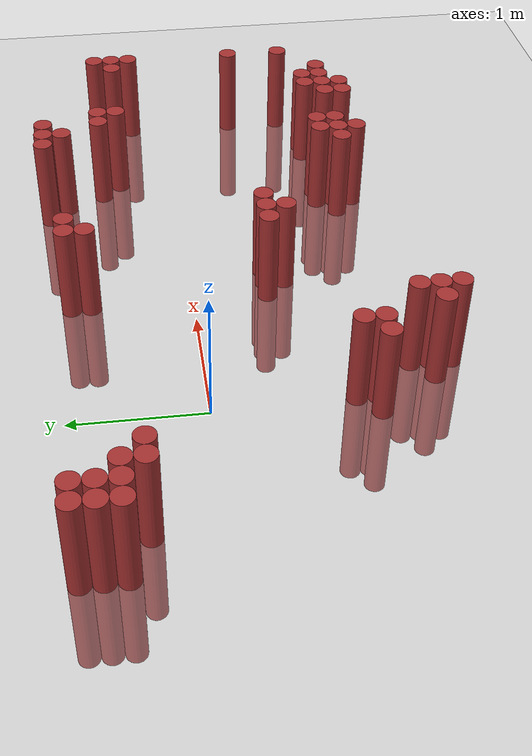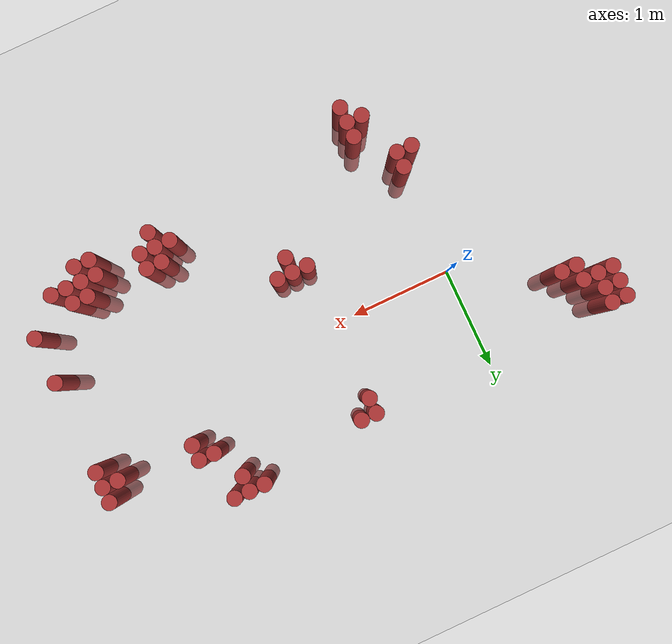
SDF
<sdf version="1.6">
 <world name="default">
  <model name="ground_plane">
   <static>1</static>
   <link name="link">
    <collision name="collision">
     <geometry><plane><normal>0 0 1</normal><size>100 100</size></plane></geometry>
     <surface><friction><ode><mu>100</mu><mu2>50</mu2></ode></friction></surface>
    </collision>
    <visual name="visual">
     <cast_shadows>0</cast_shadows>
     <geometry><plane><normal>0 0 1</normal><size>100 100</size></plane></geometry>
     <material>
      <script><uri>file://media/materials/scripts/gazebo.material</uri><name>Gazebo/Grey</name></script>
     </material>
    </visual>
   </link>
  </model>
  <model name="unit_cylinder_316">
   <static>1</static>
   <pose>-1.325000 0.625000 0.000000 0.000000 0.000000 0.000000</pose>
   <link name="link">
    <inertial>
     <mass>1</mass>
     <inertia><ixx>0.145833</ixx><ixy>0</ixy><ixz>0</ixz><iyy>0.145833</iyy><iyz>0</iyz><izz>0.125</izz></inertia>
    </inertial>
    <collision name="collision">
     <geometry><cylinder><radius>0.075000</radius><length>1.5</length></cylinder></geometry>
    </collision>
    <visual name="visual">
     <geometry><cylinder><radius>0.075000</radius><length>1.5</length></cylinder></geometry>
     <material>
      <ambient>0.648000 0.192000 0.192000 1</ambient>
      <diffuse>0.648000 0.192000 0.192000 1</diffuse>
     </material>
     <material>
      <script><name>Gazebo/Grey</name><uri>file://media/materials/scripts/gazebo.material</uri></script>
     </material>
    </visual>
   </link>
  </model>
  <model name="unit_cylinder_317">
   <static>1</static>
   <pose>-1.325000 0.775000 0.000000 0.000000 0.000000 0.000000</pose>
   <link name="link">
    <inertial>
     <mass>1</mass>
     <inertia><ixx>0.145833</ixx><ixy>0</ixy><ixz>0</ixz><iyy>0.145833</iyy><iyz>0</iyz><izz>0.125</izz></inertia>
    </inertial>
    <collision name="collision">
     <geometry><cylinder><radius>0.075000</radius><length>1.5</length></cylinder></geometry>
    </collision>
    <visual name="visual">
     <geometry><cylinder><radius>0.075000</radius><length>1.5</length></cylinder></geometry>
     <material>
      <ambient>0.648000 0.192000 0.192000 1</ambient>
      <diffuse>0.648000 0.192000 0.192000 1</diffuse>
     </material>
     <material>
      <script><name>Gazebo/Grey</name><uri>file://media/materials/scripts/gazebo.material</uri></script>
     </material>
    </visual>
   </link>
  </model>
  <model name="unit_cylinder_318">
   <static>1</static>
   <pose>-1.325000 0.925000 0.000000 0.000000 0.000000 0.000000</pose>
   <link name="link">
    <inertial>
     <mass>1</mass>
     <inertia><ixx>0.145833</ixx><ixy>0</ixy><ixz>0</ixz><iyy>0.145833</iyy><iyz>0</iyz><izz>0.125</izz></inertia>
    </inertial>
    <collision name="collision">
     <geometry><cylinder><radius>0.075000</radius><length>1.5</length></cylinder></geometry>
    </collision>
    <visual name="visual">
     <geometry><cylinder><radius>0.075000</radius><length>1.5</length></cylinder></geometry>
     <material>
      <ambient>0.648000 0.192000 0.192000 1</ambient>
      <diffuse>0.648000 0.192000 0.192000 1</diffuse>
     </material>
     <material>
      <script><name>Gazebo/Grey</name><uri>file://media/materials/scripts/gazebo.material</uri></script>
     </material>
    </visual>
   </link>
  </model>
  <model name="unit_cylinder_319">
   <static>1</static>
   <pose>-1.175000 0.625000 0.000000 0.000000 0.000000 0.000000</pose>
   <link name="link">
    <inertial>
     <mass>1</mass>
     <inertia><ixx>0.145833</ixx><ixy>0</ixy><ixz>0</ixz><iyy>0.145833</iyy><iyz>0</iyz><izz>0.125</izz></inertia>
    </inertial>
    <collision name="collision">
     <geometry><cylinder><radius>0.075000</radius><length>1.5</length></cylinder></geometry>
    </collision>
    <visual name="visual">
     <geometry><cylinder><radius>0.075000</radius><length>1.5</length></cylinder></geometry>
     <material>
      <ambient>0.648000 0.192000 0.192000 1</ambient>
      <diffuse>0.648000 0.192000 0.192000 1</diffuse>
     </material>
     <material>
      <script><name>Gazebo/Grey</name><uri>file://media/materials/scripts/gazebo.material</uri></script>
     </material>
    </visual>
   </link>
  </model>
  <model name="unit_cylinder_320">
   <static>1</static>
   <pose>-1.175000 0.775000 0.000000 0.000000 0.000000 0.000000</pose>
   <link name="link">
    <inertial>
     <mass>1</mass>
     <inertia><ixx>0.145833</ixx><ixy>0</ixy><ixz>0</ixz><iyy>0.145833</iyy><iyz>0</iyz><izz>0.125</izz></inertia>
    </inertial>
    <collision name="collision">
     <geometry><cylinder><radius>0.075000</radius><length>1.5</length></cylinder></geometry>
    </collision>
    <visual name="visual">
     <geometry><cylinder><radius>0.075000</radius><length>1.5</length></cylinder></geometry>
     <material>
      <ambient>0.648000 0.192000 0.192000 1</ambient>
      <diffuse>0.648000 0.192000 0.192000 1</diffuse>
     </material>
     <material>
      <script><name>Gazebo/Grey</name><uri>file://media/materials/scripts/gazebo.material</uri></script>
     </material>
    </visual>
   </link>
  </model>
  <model name="unit_cylinder_321">
   <static>1</static>
   <pose>-1.175000 0.925000 0.000000 0.000000 0.000000 0.000000</pose>
   <link name="link">
    <inertial>
     <mass>1</mass>
     <inertia><ixx>0.145833</ixx><ixy>0</ixy><ixz>0</ixz><iyy>0.145833</iyy><iyz>0</iyz><izz>0.125</izz></inertia>
    </inertial>
    <collision name="collision">
     <geometry><cylinder><radius>0.075000</radius><length>1.5</length></cylinder></geometry>
    </collision>
    <visual name="visual">
     <geometry><cylinder><radius>0.075000</radius><length>1.5</length></cylinder></geometry>
     <material>
      <ambient>0.648000 0.192000 0.192000 1</ambient>
      <diffuse>0.648000 0.192000 0.192000 1</diffuse>
     </material>
     <material>
      <script><name>Gazebo/Grey</name><uri>file://media/materials/scripts/gazebo.material</uri></script>
     </material>
    </visual>
   </link>
  </model>
  <model name="unit_cylinder_323">
   <static>1</static>
   <pose>-1.025000 0.475000 0.000000 0.000000 0.000000 0.000000</pose>
   <link name="link">
    <inertial>
     <mass>1</mass>
     <inertia><ixx>0.145833</ixx><ixy>0</ixy><ixz>0</ixz><iyy>0.145833</iyy><iyz>0</iyz><izz>0.125</izz></inertia>
    </inertial>
    <collision name="collision">
     <geometry><cylinder><radius>0.075000</radius><length>1.5</length></cylinder></geometry>
    </collision>
    <visual name="visual">
     <geometry><cylinder><radius>0.075000</radius><length>1.5</length></cylinder></geometry>
     <material>
      <ambient>0.648000 0.192000 0.192000 1</ambient>
      <diffuse>0.648000 0.192000 0.192000 1</diffuse>
     </material>
     <material>
      <script><name>Gazebo/Grey</name><uri>file://media/materials/scripts/gazebo.material</uri></script>
     </material>
    </visual>
   </link>
  </model>
  <model name="unit_cylinder_324">
   <static>1</static>
   <pose>-1.025000 0.625000 0.000000 0.000000 0.000000 0.000000</pose>
   <link name="link">
    <inertial>
     <mass>1</mass>
     <inertia><ixx>0.145833</ixx><ixy>0</ixy><ixz>0</ixz><iyy>0.145833</iyy><iyz>0</iyz><izz>0.125</izz></inertia>
    </inertial>
    <collision name="collision">
     <geometry><cylinder><radius>0.075000</radius><length>1.5</length></cylinder></geometry>
    </collision>
    <visual name="visual">
     <geometry><cylinder><radius>0.075000</radius><length>1.5</length></cylinder></geometry>
     <material>
      <ambient>0.648000 0.192000 0.192000 1</ambient>
      <diffuse>0.648000 0.192000 0.192000 1</diffuse>
     </material>
     <material>
      <script><name>Gazebo/Grey</name><uri>file://media/materials/scripts/gazebo.material</uri></script>
     </material>
    </visual>
   </link>
  </model>
  <model name="unit_cylinder_327">
   <static>1</static>
   <pose>-0.875000 0.475000 0.000000 0.000000 0.000000 0.000000</pose>
   <link name="link">
    <inertial>
     <mass>1</mass>
     <inertia><ixx>0.145833</ixx><ixy>0</ixy><ixz>0</ixz><iyy>0.145833</iyy><iyz>0</iyz><izz>0.125</izz></inertia>
    </inertial>
    <collision name="collision">
     <geometry><cylinder><radius>0.075000</radius><length>1.5</length></cylinder></geometry>
    </collision>
    <visual name="visual">
     <geometry><cylinder><radius>0.075000</radius><length>1.5</length></cylinder></geometry>
     <material>
      <ambient>0.648000 0.192000 0.192000 1</ambient>
      <diffuse>0.648000 0.192000 0.192000 1</diffuse>
     </material>
     <material>
      <script><name>Gazebo/Grey</name><uri>file://media/materials/scripts/gazebo.material</uri></script>
     </material>
    </visual>
   </link>
  </model>
  <model name="unit_cylinder_341">
   <static>1</static>
   <pose>-0.125000 -1.175000 0.000000 0.000000 0.000000 0.000000</pose>
   <link name="link">
    <inertial>
     <mass>1</mass>
     <inertia><ixx>0.145833</ixx><ixy>0</ixy><ixz>0</ixz><iyy>0.145833</iyy><iyz>0</iyz><izz>0.125</izz></inertia>
    </inertial>
    <collision name="collision">
     <geometry><cylinder><radius>0.075000</radius><length>1.5</length></cylinder></geometry>
    </collision>
    <visual name="visual">
     <geometry><cylinder><radius>0.075000</radius><length>1.5</length></cylinder></geometry>
     <material>
      <ambient>0.648000 0.192000 0.192000 1</ambient>
      <diffuse>0.648000 0.192000 0.192000 1</diffuse>
     </material>
     <material>
      <script><name>Gazebo/Grey</name><uri>file://media/materials/scripts/gazebo.material</uri></script>
     </material>
    </visual>
   </link>
  </model>
  <model name="unit_cylinder_348">
   <static>1</static>
   <pose>0.025000 -1.175000 0.000000 0.000000 0.000000 0.000000</pose>
   <link name="link">
    <inertial>
     <mass>1</mass>
     <inertia><ixx>0.145833</ixx><ixy>0</ixy><ixz>0</ixz><iyy>0.145833</iyy><iyz>0</iyz><izz>0.125</izz></inertia>
    </inertial>
    <collision name="collision">
     <geometry><cylinder><radius>0.075000</radius><length>1.5</length></cylinder></geometry>
    </collision>
    <visual name="visual">
     <geometry><cylinder><radius>0.075000</radius><length>1.5</length></cylinder></geometry>
     <material>
      <ambient>0.648000 0.192000 0.192000 1</ambient>
      <diffuse>0.648000 0.192000 0.192000 1</diffuse>
     </material>
     <material>
      <script><name>Gazebo/Grey</name><uri>file://media/materials/scripts/gazebo.material</uri></script>
     </material>
    </visual>
   </link>
  </model>
  <model name="unit_cylinder_349">
   <static>1</static>
   <pose>0.025000 -1.025000 0.000000 0.000000 0.000000 0.000000</pose>
   <link name="link">
    <inertial>
     <mass>1</mass>
     <inertia><ixx>0.145833</ixx><ixy>0</ixy><ixz>0</ixz><iyy>0.145833</iyy><iyz>0</iyz><izz>0.125</izz></inertia>
    </inertial>
    <collision name="collision">
     <geometry><cylinder><radius>0.075000</radius><length>1.5</length></cylinder></geometry>
    </collision>
    <visual name="visual">
     <geometry><cylinder><radius>0.075000</radius><length>1.5</length></cylinder></geometry>
     <material>
      <ambient>0.648000 0.192000 0.192000 1</ambient>
      <diffuse>0.648000 0.192000 0.192000 1</diffuse>
     </material>
     <material>
      <script><name>Gazebo/Grey</name><uri>file://media/materials/scripts/gazebo.material</uri></script>
     </material>
    </visual>
   </link>
  </model>
  <model name="unit_cylinder_355">
   <static>1</static>
   <pose>0.175000 -1.625000 0.000000 0.000000 0.000000 0.000000</pose>
   <link name="link">
    <inertial>
     <mass>1</mass>
     <inertia><ixx>0.145833</ixx><ixy>0</ixy><ixz>0</ixz><iyy>0.145833</iyy><iyz>0</iyz><izz>0.125</izz></inertia>
    </inertial>
    <collision name="collision">
     <geometry><cylinder><radius>0.075000</radius><length>1.5</length></cylinder></geometry>
    </collision>
    <visual name="visual">
     <geometry><cylinder><radius>0.075000</radius><length>1.5</length></cylinder></geometry>
     <material>
      <ambient>0.648000 0.192000 0.192000 1</ambient>
      <diffuse>0.648000 0.192000 0.192000 1</diffuse>
     </material>
     <material>
      <script><name>Gazebo/Grey</name><uri>file://media/materials/scripts/gazebo.material</uri></script>
     </material>
    </visual>
   </link>
  </model>
  <model name="unit_cylinder_358">
   <static>1</static>
   <pose>0.325000 -1.775000 0.000000 0.000000 0.000000 0.000000</pose>
   <link name="link">
    <inertial>
     <mass>1</mass>
     <inertia><ixx>0.145833</ixx><ixy>0</ixy><ixz>0</ixz><iyy>0.145833</iyy><iyz>0</iyz><izz>0.125</izz></inertia>
    </inertial>
    <collision name="collision">
     <geometry><cylinder><radius>0.075000</radius><length>1.5</length></cylinder></geometry>
    </collision>
    <visual name="visual">
     <geometry><cylinder><radius>0.075000</radius><length>1.5</length></cylinder></geometry>
     <material>
      <ambient>0.648000 0.192000 0.192000 1</ambient>
      <diffuse>0.648000 0.192000 0.192000 1</diffuse>
     </material>
     <material>
      <script><name>Gazebo/Grey</name><uri>file://media/materials/scripts/gazebo.material</uri></script>
     </material>
    </visual>
   </link>
  </model>
  <model name="unit_cylinder_359">
   <static>1</static>
   <pose>0.325000 -1.625000 0.000000 0.000000 0.000000 0.000000</pose>
   <link name="link">
    <inertial>
     <mass>1</mass>
     <inertia><ixx>0.145833</ixx><ixy>0</ixy><ixz>0</ixz><iyy>0.145833</iyy><iyz>0</iyz><izz>0.125</izz></inertia>
    </inertial>
    <collision name="collision">
     <geometry><cylinder><radius>0.075000</radius><length>1.5</length></cylinder></geometry>
    </collision>
    <visual name="visual">
     <geometry><cylinder><radius>0.075000</radius><length>1.5</length></cylinder></geometry>
     <material>
      <ambient>0.648000 0.192000 0.192000 1</ambient>
      <diffuse>0.648000 0.192000 0.192000 1</diffuse>
     </material>
     <material>
      <script><name>Gazebo/Grey</name><uri>file://media/materials/scripts/gazebo.material</uri></script>
     </material>
    </visual>
   </link>
  </model>
  <model name="unit_cylinder_360">
   <static>1</static>
   <pose>0.325000 -1.475000 0.000000 0.000000 0.000000 0.000000</pose>
   <link name="link">
    <inertial>
     <mass>1</mass>
     <inertia><ixx>0.145833</ixx><ixy>0</ixy><ixz>0</ixz><iyy>0.145833</iyy><iyz>0</iyz><izz>0.125</izz></inertia>
    </inertial>
    <collision name="collision">
     <geometry><cylinder><radius>0.075000</radius><length>1.5</length></cylinder></geometry>
    </collision>
    <visual name="visual">
     <geometry><cylinder><radius>0.075000</radius><length>1.5</length></cylinder></geometry>
     <material>
      <ambient>0.648000 0.192000 0.192000 1</ambient>
      <diffuse>0.648000 0.192000 0.192000 1</diffuse>
     </material>
     <material>
      <script><name>Gazebo/Grey</name><uri>file://media/materials/scripts/gazebo.material</uri></script>
     </material>
    </visual>
   </link>
  </model>
  <model name="unit_cylinder_370">
   <static>1</static>
   <pose>1.225000 -0.575000 0.000000 0.000000 0.000000 0.000000</pose>
   <link name="link">
    <inertial>
     <mass>1</mass>
     <inertia><ixx>0.145833</ixx><ixy>0</ixy><ixz>0</ixz><iyy>0.145833</iyy><iyz>0</iyz><izz>0.125</izz></inertia>
    </inertial>
    <collision name="collision">
     <geometry><cylinder><radius>0.075000</radius><length>1.5</length></cylinder></geometry>
    </collision>
    <visual name="visual">
     <geometry><cylinder><radius>0.075000</radius><length>1.5</length></cylinder></geometry>
     <material>
      <ambient>0.648000 0.192000 0.192000 1</ambient>
      <diffuse>0.648000 0.192000 0.192000 1</diffuse>
     </material>
     <material>
      <script><name>Gazebo/Grey</name><uri>file://media/materials/scripts/gazebo.material</uri></script>
     </material>
    </visual>
   </link>
  </model>
  <model name="unit_cylinder_371">
   <static>1</static>
   <pose>1.225000 0.775000 0.000000 0.000000 0.000000 0.000000</pose>
   <link name="link">
    <inertial>
     <mass>1</mass>
     <inertia><ixx>0.145833</ixx><ixy>0</ixy><ixz>0</ixz><iyy>0.145833</iyy><iyz>0</iyz><izz>0.125</izz></inertia>
    </inertial>
    <collision name="collision">
     <geometry><cylinder><radius>0.075000</radius><length>1.5</length></cylinder></geometry>
    </collision>
    <visual name="visual">
     <geometry><cylinder><radius>0.075000</radius><length>1.5</length></cylinder></geometry>
     <material>
      <ambient>0.648000 0.192000 0.192000 1</ambient>
      <diffuse>0.648000 0.192000 0.192000 1</diffuse>
     </material>
     <material>
      <script><name>Gazebo/Grey</name><uri>file://media/materials/scripts/gazebo.material</uri></script>
     </material>
    </visual>
   </link>
  </model>
  <model name="unit_cylinder_372">
   <static>1</static>
   <pose>1.225000 0.925000 0.000000 0.000000 0.000000 0.000000</pose>
   <link name="link">
    <inertial>
     <mass>1</mass>
     <inertia><ixx>0.145833</ixx><ixy>0</ixy><ixz>0</ixz><iyy>0.145833</iyy><iyz>0</iyz><izz>0.125</izz></inertia>
    </inertial>
    <collision name="collision">
     <geometry><cylinder><radius>0.075000</radius><length>1.5</length></cylinder></geometry>
    </collision>
    <visual name="visual">
     <geometry><cylinder><radius>0.075000</radius><length>1.5</length></cylinder></geometry>
     <material>
      <ambient>0.648000 0.192000 0.192000 1</ambient>
      <diffuse>0.648000 0.192000 0.192000 1</diffuse>
     </material>
     <material>
      <script><name>Gazebo/Grey</name><uri>file://media/materials/scripts/gazebo.material</uri></script>
     </material>
    </visual>
   </link>
  </model>
  <model name="unit_cylinder_378">
   <static>1</static>
   <pose>1.375000 -0.725000 0.000000 0.000000 0.000000 0.000000</pose>
   <link name="link">
    <inertial>
     <mass>1</mass>
     <inertia><ixx>0.145833</ixx><ixy>0</ixy><ixz>0</ixz><iyy>0.145833</iyy><iyz>0</iyz><izz>0.125</izz></inertia>
    </inertial>
    <collision name="collision">
     <geometry><cylinder><radius>0.075000</radius><length>1.5</length></cylinder></geometry>
    </collision>
    <visual name="visual">
     <geometry><cylinder><radius>0.075000</radius><length>1.5</length></cylinder></geometry>
     <material>
      <ambient>0.648000 0.192000 0.192000 1</ambient>
      <diffuse>0.648000 0.192000 0.192000 1</diffuse>
     </material>
     <material>
      <script><name>Gazebo/Grey</name><uri>file://media/materials/scripts/gazebo.material</uri></script>
     </material>
    </visual>
   </link>
  </model>
  <model name="unit_cylinder_379">
   <static>1</static>
   <pose>1.375000 -0.575000 0.000000 0.000000 0.000000 0.000000</pose>
   <link name="link">
    <inertial>
     <mass>1</mass>
     <inertia><ixx>0.145833</ixx><ixy>0</ixy><ixz>0</ixz><iyy>0.145833</iyy><iyz>0</iyz><izz>0.125</izz></inertia>
    </inertial>
    <collision name="collision">
     <geometry><cylinder><radius>0.075000</radius><length>1.5</length></cylinder></geometry>
    </collision>
    <visual name="visual">
     <geometry><cylinder><radius>0.075000</radius><length>1.5</length></cylinder></geometry>
     <material>
      <ambient>0.648000 0.192000 0.192000 1</ambient>
      <diffuse>0.648000 0.192000 0.192000 1</diffuse>
     </material>
     <material>
      <script><name>Gazebo/Grey</name><uri>file://media/materials/scripts/gazebo.material</uri></script>
     </material>
    </visual>
   </link>
  </model>
  <model name="unit_cylinder_380">
   <static>1</static>
   <pose>1.375000 0.925000 0.000000 0.000000 0.000000 0.000000</pose>
   <link name="link">
    <inertial>
     <mass>1</mass>
     <inertia><ixx>0.145833</ixx><ixy>0</ixy><ixz>0</ixz><iyy>0.145833</iyy><iyz>0</iyz><izz>0.125</izz></inertia>
    </inertial>
    <collision name="collision">
     <geometry><cylinder><radius>0.075000</radius><length>1.5</length></cylinder></geometry>
    </collision>
    <visual name="visual">
     <geometry><cylinder><radius>0.075000</radius><length>1.5</length></cylinder></geometry>
     <material>
      <ambient>0.648000 0.192000 0.192000 1</ambient>
      <diffuse>0.648000 0.192000 0.192000 1</diffuse>
     </material>
     <material>
      <script><name>Gazebo/Grey</name><uri>file://media/materials/scripts/gazebo.material</uri></script>
     </material>
    </visual>
   </link>
  </model>
  <model name="unit_cylinder_384">
   <static>1</static>
   <pose>1.525000 -0.575000 0.000000 0.000000 0.000000 0.000000</pose>
   <link name="link">
    <inertial>
     <mass>1</mass>
     <inertia><ixx>0.145833</ixx><ixy>0</ixy><ixz>0</ixz><iyy>0.145833</iyy><iyz>0</iyz><izz>0.125</izz></inertia>
    </inertial>
    <collision name="collision">
     <geometry><cylinder><radius>0.075000</radius><length>1.5</length></cylinder></geometry>
    </collision>
    <visual name="visual">
     <geometry><cylinder><radius>0.075000</radius><length>1.5</length></cylinder></geometry>
     <material>
      <ambient>0.648000 0.192000 0.192000 1</ambient>
      <diffuse>0.648000 0.192000 0.192000 1</diffuse>
     </material>
     <material>
      <script><name>Gazebo/Grey</name><uri>file://media/materials/scripts/gazebo.material</uri></script>
     </material>
    </visual>
   </link>
  </model>
  <model name="unit_cylinder_392">
   <static>1</static>
   <pose>2.275000 -1.325000 0.000000 0.000000 0.000000 0.000000</pose>
   <link name="link">
    <inertial>
     <mass>1</mass>
     <inertia><ixx>0.145833</ixx><ixy>0</ixy><ixz>0</ixz><iyy>0.145833</iyy><iyz>0</iyz><izz>0.125</izz></inertia>
    </inertial>
    <collision name="collision">
     <geometry><cylinder><radius>0.075000</radius><length>1.5</length></cylinder></geometry>
    </collision>
    <visual name="visual">
     <geometry><cylinder><radius>0.075000</radius><length>1.5</length></cylinder></geometry>
     <material>
      <ambient>0.648000 0.192000 0.192000 1</ambient>
      <diffuse>0.648000 0.192000 0.192000 1</diffuse>
     </material>
     <material>
      <script><name>Gazebo/Grey</name><uri>file://media/materials/scripts/gazebo.material</uri></script>
     </material>
    </visual>
   </link>
  </model>
  <model name="unit_cylinder_393">
   <static>1</static>
   <pose>2.425000 -1.475000 0.000000 0.000000 0.000000 0.000000</pose>
   <link name="link">
    <inertial>
     <mass>1</mass>
     <inertia><ixx>0.145833</ixx><ixy>0</ixy><ixz>0</ixz><iyy>0.145833</iyy><iyz>0</iyz><izz>0.125</izz></inertia>
    </inertial>
    <collision name="collision">
     <geometry><cylinder><radius>0.075000</radius><length>1.5</length></cylinder></geometry>
    </collision>
    <visual name="visual">
     <geometry><cylinder><radius>0.075000</radius><length>1.5</length></cylinder></geometry>
     <material>
      <ambient>0.648000 0.192000 0.192000 1</ambient>
      <diffuse>0.648000 0.192000 0.192000 1</diffuse>
     </material>
     <material>
      <script><name>Gazebo/Grey</name><uri>file://media/materials/scripts/gazebo.material</uri></script>
     </material>
    </visual>
   </link>
  </model>
  <model name="unit_cylinder_394">
   <static>1</static>
   <pose>2.425000 -1.325000 0.000000 0.000000 0.000000 0.000000</pose>
   <link name="link">
    <inertial>
     <mass>1</mass>
     <inertia><ixx>0.145833</ixx><ixy>0</ixy><ixz>0</ixz><iyy>0.145833</iyy><iyz>0</iyz><izz>0.125</izz></inertia>
    </inertial>
    <collision name="collision">
     <geometry><cylinder><radius>0.075000</radius><length>1.5</length></cylinder></geometry>
    </collision>
    <visual name="visual">
     <geometry><cylinder><radius>0.075000</radius><length>1.5</length></cylinder></geometry>
     <material>
      <ambient>0.648000 0.192000 0.192000 1</ambient>
      <diffuse>0.648000 0.192000 0.192000 1</diffuse>
     </material>
     <material>
      <script><name>Gazebo/Grey</name><uri>file://media/materials/scripts/gazebo.material</uri></script>
     </material>
    </visual>
   </link>
  </model>
  <model name="unit_cylinder_395">
   <static>1</static>
   <pose>2.425000 -1.175000 0.000000 0.000000 0.000000 0.000000</pose>
   <link name="link">
    <inertial>
     <mass>1</mass>
     <inertia><ixx>0.145833</ixx><ixy>0</ixy><ixz>0</ixz><iyy>0.145833</iyy><iyz>0</iyz><izz>0.125</izz></inertia>
    </inertial>
    <collision name="collision">
     <geometry><cylinder><radius>0.075000</radius><length>1.5</length></cylinder></geometry>
    </collision>
    <visual name="visual">
     <geometry><cylinder><radius>0.075000</radius><length>1.5</length></cylinder></geometry>
     <material>
      <ambient>0.648000 0.192000 0.192000 1</ambient>
      <diffuse>0.648000 0.192000 0.192000 1</diffuse>
     </material>
     <material>
      <script><name>Gazebo/Grey</name><uri>file://media/materials/scripts/gazebo.material</uri></script>
     </material>
    </visual>
   </link>
  </model>
  <model name="unit_cylinder_396">
   <static>1</static>
   <pose>2.425000 1.075000 0.000000 0.000000 0.000000 0.000000</pose>
   <link name="link">
    <inertial>
     <mass>1</mass>
     <inertia><ixx>0.145833</ixx><ixy>0</ixy><ixz>0</ixz><iyy>0.145833</iyy><iyz>0</iyz><izz>0.125</izz></inertia>
    </inertial>
    <collision name="collision">
     <geometry><cylinder><radius>0.075000</radius><length>1.5</length></cylinder></geometry>
    </collision>
    <visual name="visual">
     <geometry><cylinder><radius>0.075000</radius><length>1.5</length></cylinder></geometry>
     <material>
      <ambient>0.648000 0.192000 0.192000 1</ambient>
      <diffuse>0.648000 0.192000 0.192000 1</diffuse>
     </material>
     <material>
      <script><name>Gazebo/Grey</name><uri>file://media/materials/scripts/gazebo.material</uri></script>
     </material>
    </visual>
   </link>
  </model>
  <model name="unit_cylinder_397">
   <static>1</static>
   <pose>2.575000 -1.325000 0.000000 0.000000 0.000000 0.000000</pose>
   <link name="link">
    <inertial>
     <mass>1</mass>
     <inertia><ixx>0.145833</ixx><ixy>0</ixy><ixz>0</ixz><iyy>0.145833</iyy><iyz>0</iyz><izz>0.125</izz></inertia>
    </inertial>
    <collision name="collision">
     <geometry><cylinder><radius>0.075000</radius><length>1.5</length></cylinder></geometry>
    </collision>
    <visual name="visual">
     <geometry><cylinder><radius>0.075000</radius><length>1.5</length></cylinder></geometry>
     <material>
      <ambient>0.648000 0.192000 0.192000 1</ambient>
      <diffuse>0.648000 0.192000 0.192000 1</diffuse>
     </material>
     <material>
      <script><name>Gazebo/Grey</name><uri>file://media/materials/scripts/gazebo.material</uri></script>
     </material>
    </visual>
   </link>
  </model>
  <model name="unit_cylinder_398">
   <static>1</static>
   <pose>2.575000 -1.175000 0.000000 0.000000 0.000000 0.000000</pose>
   <link name="link">
    <inertial>
     <mass>1</mass>
     <inertia><ixx>0.145833</ixx><ixy>0</ixy><ixz>0</ixz><iyy>0.145833</iyy><iyz>0</iyz><izz>0.125</izz></inertia>
    </inertial>
    <collision name="collision">
     <geometry><cylinder><radius>0.075000</radius><length>1.5</length></cylinder></geometry>
    </collision>
    <visual name="visual">
     <geometry><cylinder><radius>0.075000</radius><length>1.5</length></cylinder></geometry>
     <material>
      <ambient>0.648000 0.192000 0.192000 1</ambient>
      <diffuse>0.648000 0.192000 0.192000 1</diffuse>
     </material>
     <material>
      <script><name>Gazebo/Grey</name><uri>file://media/materials/scripts/gazebo.material</uri></script>
     </material>
    </visual>
   </link>
  </model>
  <model name="unit_cylinder_399">
   <static>1</static>
   <pose>2.575000 0.925000 0.000000 0.000000 0.000000 0.000000</pose>
   <link name="link">
    <inertial>
     <mass>1</mass>
     <inertia><ixx>0.145833</ixx><ixy>0</ixy><ixz>0</ixz><iyy>0.145833</iyy><iyz>0</iyz><izz>0.125</izz></inertia>
    </inertial>
    <collision name="collision">
     <geometry><cylinder><radius>0.075000</radius><length>1.5</length></cylinder></geometry>
    </collision>
    <visual name="visual">
     <geometry><cylinder><radius>0.075000</radius><length>1.5</length></cylinder></geometry>
     <material>
      <ambient>0.648000 0.192000 0.192000 1</ambient>
      <diffuse>0.648000 0.192000 0.192000 1</diffuse>
     </material>
     <material>
      <script><name>Gazebo/Grey</name><uri>file://media/materials/scripts/gazebo.material</uri></script>
     </material>
    </visual>
   </link>
  </model>
  <model name="unit_cylinder_400">
   <static>1</static>
   <pose>2.575000 1.075000 0.000000 0.000000 0.000000 0.000000</pose>
   <link name="link">
    <inertial>
     <mass>1</mass>
     <inertia><ixx>0.145833</ixx><ixy>0</ixy><ixz>0</ixz><iyy>0.145833</iyy><iyz>0</iyz><izz>0.125</izz></inertia>
    </inertial>
    <collision name="collision">
     <geometry><cylinder><radius>0.075000</radius><length>1.5</length></cylinder></geometry>
    </collision>
    <visual name="visual">
     <geometry><cylinder><radius>0.075000</radius><length>1.5</length></cylinder></geometry>
     <material>
      <ambient>0.648000 0.192000 0.192000 1</ambient>
      <diffuse>0.648000 0.192000 0.192000 1</diffuse>
     </material>
     <material>
      <script><name>Gazebo/Grey</name><uri>file://media/materials/scripts/gazebo.material</uri></script>
     </material>
    </visual>
   </link>
  </model>
  <model name="unit_cylinder_402">
   <static>1</static>
   <pose>2.725000 0.625000 0.000000 0.000000 0.000000 0.000000</pose>
   <link name="link">
    <inertial>
     <mass>1</mass>
     <inertia><ixx>0.145833</ixx><ixy>0</ixy><ixz>0</ixz><iyy>0.145833</iyy><iyz>0</iyz><izz>0.125</izz></inertia>
    </inertial>
    <collision name="collision">
     <geometry><cylinder><radius>0.075000</radius><length>1.5</length></cylinder></geometry>
    </collision>
    <visual name="visual">
     <geometry><cylinder><radius>0.075000</radius><length>1.5</length></cylinder></geometry>
     <material>
      <ambient>0.648000 0.192000 0.192000 1</ambient>
      <diffuse>0.648000 0.192000 0.192000 1</diffuse>
     </material>
     <material>
      <script><name>Gazebo/Grey</name><uri>file://media/materials/scripts/gazebo.material</uri></script>
     </material>
    </visual>
   </link>
  </model>
  <model name="unit_cylinder_403">
   <static>1</static>
   <pose>2.725000 1.075000 0.000000 0.000000 0.000000 0.000000</pose>
   <link name="link">
    <inertial>
     <mass>1</mass>
     <inertia><ixx>0.145833</ixx><ixy>0</ixy><ixz>0</ixz><iyy>0.145833</iyy><iyz>0</iyz><izz>0.125</izz></inertia>
    </inertial>
    <collision name="collision">
     <geometry><cylinder><radius>0.075000</radius><length>1.5</length></cylinder></geometry>
    </collision>
    <visual name="visual">
     <geometry><cylinder><radius>0.075000</radius><length>1.5</length></cylinder></geometry>
     <material>
      <ambient>0.648000 0.192000 0.192000 1</ambient>
      <diffuse>0.648000 0.192000 0.192000 1</diffuse>
     </material>
     <material>
      <script><name>Gazebo/Grey</name><uri>file://media/materials/scripts/gazebo.material</uri></script>
     </material>
    </visual>
   </link>
  </model>
  <model name="unit_cylinder_406">
   <static>1</static>
   <pose>2.875000 0.475000 0.000000 0.000000 0.000000 0.000000</pose>
   <link name="link">
    <inertial>
     <mass>1</mass>
     <inertia><ixx>0.145833</ixx><ixy>0</ixy><ixz>0</ixz><iyy>0.145833</iyy><iyz>0</iyz><izz>0.125</izz></inertia>
    </inertial>
    <collision name="collision">
     <geometry><cylinder><radius>0.075000</radius><length>1.5</length></cylinder></geometry>
    </collision>
    <visual name="visual">
     <geometry><cylinder><radius>0.075000</radius><length>1.5</length></cylinder></geometry>
     <material>
      <ambient>0.648000 0.192000 0.192000 1</ambient>
      <diffuse>0.648000 0.192000 0.192000 1</diffuse>
     </material>
     <material>
      <script><name>Gazebo/Grey</name><uri>file://media/materials/scripts/gazebo.material</uri></script>
     </material>
    </visual>
   </link>
  </model>
  <model name="unit_cylinder_407">
   <static>1</static>
   <pose>2.875000 0.625000 0.000000 0.000000 0.000000 0.000000</pose>
   <link name="link">
    <inertial>
     <mass>1</mass>
     <inertia><ixx>0.145833</ixx><ixy>0</ixy><ixz>0</ixz><iyy>0.145833</iyy><iyz>0</iyz><izz>0.125</izz></inertia>
    </inertial>
    <collision name="collision">
     <geometry><cylinder><radius>0.075000</radius><length>1.5</length></cylinder></geometry>
    </collision>
    <visual name="visual">
     <geometry><cylinder><radius>0.075000</radius><length>1.5</length></cylinder></geometry>
     <material>
      <ambient>0.648000 0.192000 0.192000 1</ambient>
      <diffuse>0.648000 0.192000 0.192000 1</diffuse>
     </material>
     <material>
      <script><name>Gazebo/Grey</name><uri>file://media/materials/scripts/gazebo.material</uri></script>
     </material>
    </visual>
   </link>
  </model>
  <model name="unit_cylinder_410">
   <static>1</static>
   <pose>3.025000 -1.475000 0.000000 0.000000 0.000000 0.000000</pose>
   <link name="link">
    <inertial>
     <mass>1</mass>
     <inertia><ixx>0.145833</ixx><ixy>0</ixy><ixz>0</ixz><iyy>0.145833</iyy><iyz>0</iyz><izz>0.125</izz></inertia>
    </inertial>
    <collision name="collision">
     <geometry><cylinder><radius>0.075000</radius><length>1.5</length></cylinder></geometry>
    </collision>
    <visual name="visual">
     <geometry><cylinder><radius>0.075000</radius><length>1.5</length></cylinder></geometry>
     <material>
      <ambient>0.648000 0.192000 0.192000 1</ambient>
      <diffuse>0.648000 0.192000 0.192000 1</diffuse>
     </material>
     <material>
      <script><name>Gazebo/Grey</name><uri>file://media/materials/scripts/gazebo.material</uri></script>
     </material>
    </visual>
   </link>
  </model>
  <model name="unit_cylinder_411">
   <static>1</static>
   <pose>3.025000 -1.325000 0.000000 0.000000 0.000000 0.000000</pose>
   <link name="link">
    <inertial>
     <mass>1</mass>
     <inertia><ixx>0.145833</ixx><ixy>0</ixy><ixz>0</ixz><iyy>0.145833</iyy><iyz>0</iyz><izz>0.125</izz></inertia>
    </inertial>
    <collision name="collision">
     <geometry><cylinder><radius>0.075000</radius><length>1.5</length></cylinder></geometry>
    </collision>
    <visual name="visual">
     <geometry><cylinder><radius>0.075000</radius><length>1.5</length></cylinder></geometry>
     <material>
      <ambient>0.648000 0.192000 0.192000 1</ambient>
      <diffuse>0.648000 0.192000 0.192000 1</diffuse>
     </material>
     <material>
      <script><name>Gazebo/Grey</name><uri>file://media/materials/scripts/gazebo.material</uri></script>
     </material>
    </visual>
   </link>
  </model>
  <model name="unit_cylinder_414">
   <static>1</static>
   <pose>3.175000 -1.475000 0.000000 0.000000 0.000000 0.000000</pose>
   <link name="link">
    <inertial>
     <mass>1</mass>
     <inertia><ixx>0.145833</ixx><ixy>0</ixy><ixz>0</ixz><iyy>0.145833</iyy><iyz>0</iyz><izz>0.125</izz></inertia>
    </inertial>
    <collision name="collision">
     <geometry><cylinder><radius>0.075000</radius><length>1.5</length></cylinder></geometry>
    </collision>
    <visual name="visual">
     <geometry><cylinder><radius>0.075000</radius><length>1.5</length></cylinder></geometry>
     <material>
      <ambient>0.648000 0.192000 0.192000 1</ambient>
      <diffuse>0.648000 0.192000 0.192000 1</diffuse>
     </material>
     <material>
      <script><name>Gazebo/Grey</name><uri>file://media/materials/scripts/gazebo.material</uri></script>
     </material>
    </visual>
   </link>
  </model>
  <model name="unit_cylinder_415">
   <static>1</static>
   <pose>3.175000 -1.325000 0.000000 0.000000 0.000000 0.000000</pose>
   <link name="link">
    <inertial>
     <mass>1</mass>
     <inertia><ixx>0.145833</ixx><ixy>0</ixy><ixz>0</ixz><iyy>0.145833</iyy><iyz>0</iyz><izz>0.125</izz></inertia>
    </inertial>
    <collision name="collision">
     <geometry><cylinder><radius>0.075000</radius><length>1.5</length></cylinder></geometry>
    </collision>
    <visual name="visual">
     <geometry><cylinder><radius>0.075000</radius><length>1.5</length></cylinder></geometry>
     <material>
      <ambient>0.648000 0.192000 0.192000 1</ambient>
      <diffuse>0.648000 0.192000 0.192000 1</diffuse>
     </material>
     <material>
      <script><name>Gazebo/Grey</name><uri>file://media/materials/scripts/gazebo.material</uri></script>
     </material>
    </visual>
   </link>
  </model>
  <model name="unit_cylinder_416">
   <static>1</static>
   <pose>3.175000 -1.175000 0.000000 0.000000 0.000000 0.000000</pose>
   <link name="link">
    <inertial>
     <mass>1</mass>
     <inertia><ixx>0.145833</ixx><ixy>0</ixy><ixz>0</ixz><iyy>0.145833</iyy><iyz>0</iyz><izz>0.125</izz></inertia>
    </inertial>
    <collision name="collision">
     <geometry><cylinder><radius>0.075000</radius><length>1.5</length></cylinder></geometry>
    </collision>
    <visual name="visual">
     <geometry><cylinder><radius>0.075000</radius><length>1.5</length></cylinder></geometry>
     <material>
      <ambient>0.648000 0.192000 0.192000 1</ambient>
      <diffuse>0.648000 0.192000 0.192000 1</diffuse>
     </material>
     <material>
      <script><name>Gazebo/Grey</name><uri>file://media/materials/scripts/gazebo.material</uri></script>
     </material>
    </visual>
   </link>
  </model>
  <model name="unit_cylinder_417">
   <static>1</static>
   <pose>3.325000 -1.325000 0.000000 0.000000 0.000000 0.000000</pose>
   <link name="link">
    <inertial>
     <mass>1</mass>
     <inertia><ixx>0.145833</ixx><ixy>0</ixy><ixz>0</ixz><iyy>0.145833</iyy><iyz>0</iyz><izz>0.125</izz></inertia>
    </inertial>
    <collision name="collision">
     <geometry><cylinder><radius>0.075000</radius><length>1.5</length></cylinder></geometry>
    </collision>
    <visual name="visual">
     <geometry><cylinder><radius>0.075000</radius><length>1.5</length></cylinder></geometry>
     <material>
      <ambient>0.648000 0.192000 0.192000 1</ambient>
      <diffuse>0.648000 0.192000 0.192000 1</diffuse>
     </material>
     <material>
      <script><name>Gazebo/Grey</name><uri>file://media/materials/scripts/gazebo.material</uri></script>
     </material>
    </visual>
   </link>
  </model>
  <model name="unit_cylinder_418">
   <static>1</static>
   <pose>3.325000 -1.175000 0.000000 0.000000 0.000000 0.000000</pose>
   <link name="link">
    <inertial>
     <mass>1</mass>
     <inertia><ixx>0.145833</ixx><ixy>0</ixy><ixz>0</ixz><iyy>0.145833</iyy><iyz>0</iyz><izz>0.125</izz></inertia>
    </inertial>
    <collision name="collision">
     <geometry><cylinder><radius>0.075000</radius><length>1.5</length></cylinder></geometry>
    </collision>
    <visual name="visual">
     <geometry><cylinder><radius>0.075000</radius><length>1.5</length></cylinder></geometry>
     <material>
      <ambient>0.648000 0.192000 0.192000 1</ambient>
      <diffuse>0.648000 0.192000 0.192000 1</diffuse>
     </material>
     <material>
      <script><name>Gazebo/Grey</name><uri>file://media/materials/scripts/gazebo.material</uri></script>
     </material>
    </visual>
   </link>
  </model>
  <model name="unit_cylinder_419">
   <static>1</static>
   <pose>3.475000 -1.325000 0.000000 0.000000 0.000000 0.000000</pose>
   <link name="link">
    <inertial>
     <mass>1</mass>
     <inertia><ixx>0.145833</ixx><ixy>0</ixy><ixz>0</ixz><iyy>0.145833</iyy><iyz>0</iyz><izz>0.125</izz></inertia>
    </inertial>
    <collision name="collision">
     <geometry><cylinder><radius>0.075000</radius><length>1.5</length></cylinder></geometry>
    </collision>
    <visual name="visual">
     <geometry><cylinder><radius>0.075000</radius><length>1.5</length></cylinder></geometry>
     <material>
      <ambient>0.648000 0.192000 0.192000 1</ambient>
      <diffuse>0.648000 0.192000 0.192000 1</diffuse>
     </material>
     <material>
      <script><name>Gazebo/Grey</name><uri>file://media/materials/scripts/gazebo.material</uri></script>
     </material>
    </visual>
   </link>
  </model>
  <model name="unit_cylinder_420">
   <static>1</static>
   <pose>3.625000 0.475000 0.000000 0.000000 0.000000 0.000000</pose>
   <link name="link">
    <inertial>
     <mass>1</mass>
     <inertia><ixx>0.145833</ixx><ixy>0</ixy><ixz>0</ixz><iyy>0.145833</iyy><iyz>0</iyz><izz>0.125</izz></inertia>
    </inertial>
    <collision name="collision">
     <geometry><cylinder><radius>0.075000</radius><length>1.5</length></cylinder></geometry>
    </collision>
    <visual name="visual">
     <geometry><cylinder><radius>0.075000</radius><length>1.5</length></cylinder></geometry>
     <material>
      <ambient>0.648000 0.192000 0.192000 1</ambient>
      <diffuse>0.648000 0.192000 0.192000 1</diffuse>
     </material>
     <material>
      <script><name>Gazebo/Grey</name><uri>file://media/materials/scripts/gazebo.material</uri></script>
     </material>
    </visual>
   </link>
  </model>
  <model name="unit_cylinder_426">
   <static>1</static>
   <pose>3.775000 -1.025000 0.000000 0.000000 0.000000 0.000000</pose>
   <link name="link">
    <inertial>
     <mass>1</mass>
     <inertia><ixx>0.145833</ixx><ixy>0</ixy><ixz>0</ixz><iyy>0.145833</iyy><iyz>0</iyz><izz>0.125</izz></inertia>
    </inertial>
    <collision name="collision">
     <geometry><cylinder><radius>0.075000</radius><length>1.5</length></cylinder></geometry>
    </collision>
    <visual name="visual">
     <geometry><cylinder><radius>0.075000</radius><length>1.5</length></cylinder></geometry>
     <material>
      <ambient>0.648000 0.192000 0.192000 1</ambient>
      <diffuse>0.648000 0.192000 0.192000 1</diffuse>
     </material>
     <material>
      <script><name>Gazebo/Grey</name><uri>file://media/materials/scripts/gazebo.material</uri></script>
     </material>
    </visual>
   </link>
  </model>
  <model name="unit_cylinder_427">
   <static>1</static>
   <pose>3.775000 -0.575000 0.000000 0.000000 0.000000 0.000000</pose>
   <link name="link">
    <inertial>
     <mass>1</mass>
     <inertia><ixx>0.145833</ixx><ixy>0</ixy><ixz>0</ixz><iyy>0.145833</iyy><iyz>0</iyz><izz>0.125</izz></inertia>
    </inertial>
    <collision name="collision">
     <geometry><cylinder><radius>0.075000</radius><length>1.5</length></cylinder></geometry>
    </collision>
    <visual name="visual">
     <geometry><cylinder><radius>0.075000</radius><length>1.5</length></cylinder></geometry>
     <material>
      <ambient>0.648000 0.192000 0.192000 1</ambient>
      <diffuse>0.648000 0.192000 0.192000 1</diffuse>
     </material>
     <material>
      <script><name>Gazebo/Grey</name><uri>file://media/materials/scripts/gazebo.material</uri></script>
     </material>
    </visual>
   </link>
  </model>
  <model name="unit_cylinder_428">
   <static>1</static>
   <pose>3.775000 0.325000 0.000000 0.000000 0.000000 0.000000</pose>
   <link name="link">
    <inertial>
     <mass>1</mass>
     <inertia><ixx>0.145833</ixx><ixy>0</ixy><ixz>0</ixz><iyy>0.145833</iyy><iyz>0</iyz><izz>0.125</izz></inertia>
    </inertial>
    <collision name="collision">
     <geometry><cylinder><radius>0.075000</radius><length>1.5</length></cylinder></geometry>
    </collision>
    <visual name="visual">
     <geometry><cylinder><radius>0.075000</radius><length>1.5</length></cylinder></geometry>
     <material>
      <ambient>0.648000 0.192000 0.192000 1</ambient>
      <diffuse>0.648000 0.192000 0.192000 1</diffuse>
     </material>
     <material>
      <script><name>Gazebo/Grey</name><uri>file://media/materials/scripts/gazebo.material</uri></script>
     </material>
    </visual>
   </link>
  </model>
  <model name="unit_cylinder_429">
   <static>1</static>
   <pose>3.775000 0.475000 0.000000 0.000000 0.000000 0.000000</pose>
   <link name="link">
    <inertial>
     <mass>1</mass>
     <inertia><ixx>0.145833</ixx><ixy>0</ixy><ixz>0</ixz><iyy>0.145833</iyy><iyz>0</iyz><izz>0.125</izz></inertia>
    </inertial>
    <collision name="collision">
     <geometry><cylinder><radius>0.075000</radius><length>1.5</length></cylinder></geometry>
    </collision>
    <visual name="visual">
     <geometry><cylinder><radius>0.075000</radius><length>1.5</length></cylinder></geometry>
     <material>
      <ambient>0.648000 0.192000 0.192000 1</ambient>
      <diffuse>0.648000 0.192000 0.192000 1</diffuse>
     </material>
     <material>
      <script><name>Gazebo/Grey</name><uri>file://media/materials/scripts/gazebo.material</uri></script>
     </material>
    </visual>
   </link>
  </model>
  <model name="unit_cylinder_430">
   <static>1</static>
   <pose>3.775000 0.625000 0.000000 0.000000 0.000000 0.000000</pose>
   <link name="link">
    <inertial>
     <mass>1</mass>
     <inertia><ixx>0.145833</ixx><ixy>0</ixy><ixz>0</ixz><iyy>0.145833</iyy><iyz>0</iyz><izz>0.125</izz></inertia>
    </inertial>
    <collision name="collision">
     <geometry><cylinder><radius>0.075000</radius><length>1.5</length></cylinder></geometry>
    </collision>
    <visual name="visual">
     <geometry><cylinder><radius>0.075000</radius><length>1.5</length></cylinder></geometry>
     <material>
      <ambient>0.648000 0.192000 0.192000 1</ambient>
      <diffuse>0.648000 0.192000 0.192000 1</diffuse>
     </material>
     <material>
      <script><name>Gazebo/Grey</name><uri>file://media/materials/scripts/gazebo.material</uri></script>
     </material>
    </visual>
   </link>
  </model>
 </world>
</sdf>
